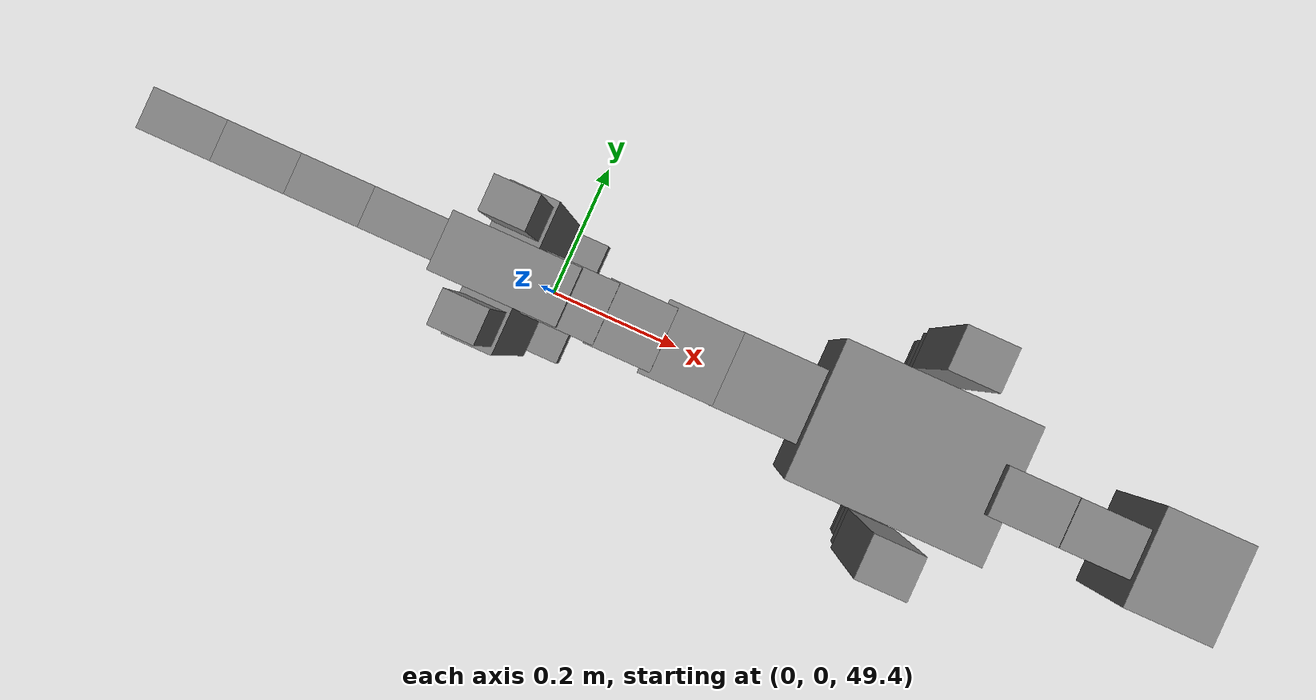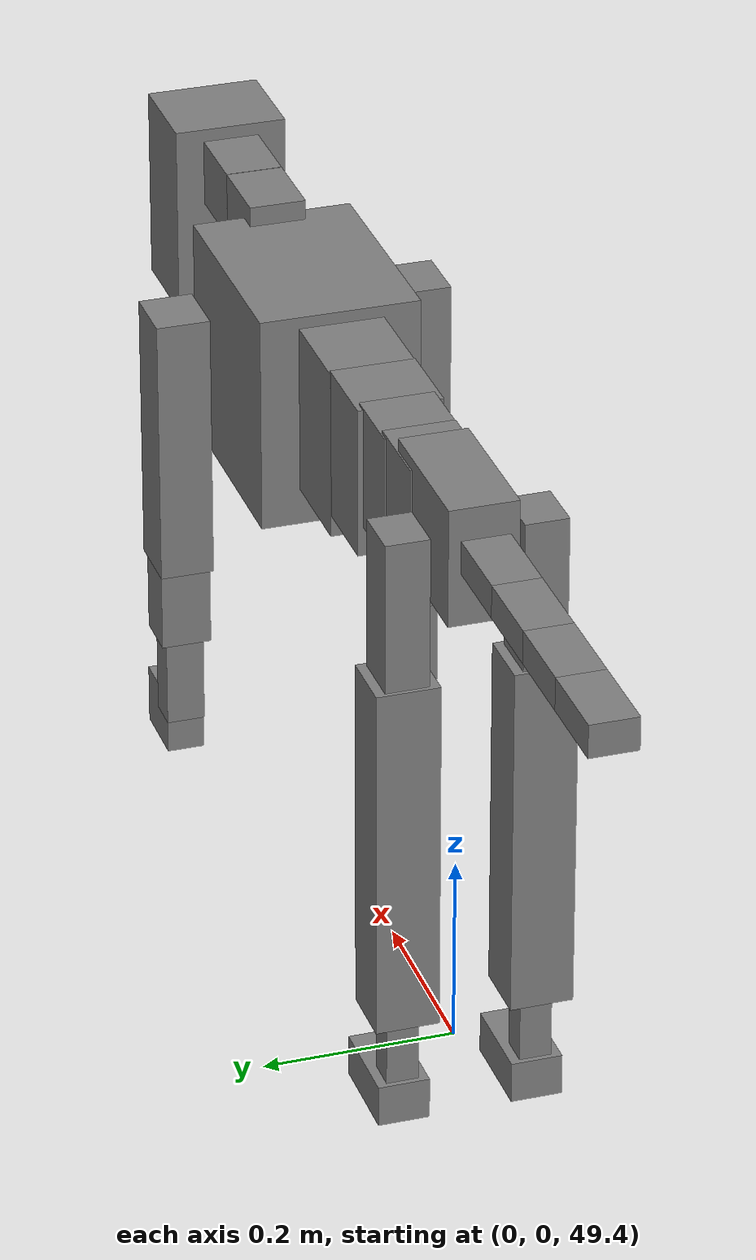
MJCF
<mujoco model="dog">

    <default>
        <joint armature="0.02" stiffness="1" damping="0.2" limited="true"/>
        <geom condim="3" friction="1 0.05 0.05" margin="0.01"/>
        <motor ctrllimited="true" ctrlrange="-1.0 1.0" forcelimited="true" gear="50"/>
    </default>

    <compiler inertiafromgeom="true" angle="radian"/>

    <option timestep="0.016" iterations="50" tolerance="1e-10" solver="Newton" jacobian="dense" cone="pyramidal"/>

    <size nconmax="20000" njmax="60000" nstack="5000000"/>
    <visual>
        <map force="0.1" zfar="30"/>
        <rgba haze="0.15 0.25 0.35 1"/>
        <quality shadowsize="2048"/>
        <global offwidth="800" offheight="800"/>
    </visual>

    <asset>
        <texture type="skybox" builtin="gradient" rgb1="0.3 0.5 0.7" rgb2="0 0 0" width="512" height="512"/>
        <texture name="texplane" type="2d" builtin="checker" rgb1=".2 .3 .4" rgb2=".1 0.15 0.2" width="512" height="512"
                 mark="cross" markrgb=".8 .8 .8"/>
        <texture name="texgeom" type="cube" builtin="flat" mark="cross" width="127" height="1278" rgb1="0.8 0.6 0.4"
                 rgb2="0.8 0.6 0.4" markrgb="1 1 1" random="0.01"/>

        <material name="matplane" reflectance="0.3" texture="texplane" texrepeat="1 1" texuniform="true"/>
        <material name="matgeom" texture="texgeom" texuniform="true" rgba="0.8 0.6 .4 1"/>
    </asset>

    <worldbody>
        <geom name="floor" pos="0 0 0" size="0 0 .25" type="plane" material="matplane" condim="3"/>

        <light directional="false" diffuse=".2 .2 .2" specular="0 0 0" pos="0 0 5" dir="0 0 -1" castshadow="false"/>
        <light mode="targetbodycom" target="torso" directional="false" diffuse=".8 .8 .8" specular="0.3 0.3 0.3"
               pos="0 0 4.0" dir="0 0 -1"/>

        <body name="root" pos="0 0 50">
            <freejoint name="root_1"/>
            <geom type="box" pos="0 0 -0.02" size="0.0774  0.0358  0.063" density="2030"/>

            <body name="spine1" pos="0.054 0 0">
                <joint name="spine1_y" axis="0 1 0" range="0 0.7" limited="true"/>
                <geom type="box" pos="0.02375 0 -0.03" size="0.04375  0.0375  0.05985" density="2030"/>

                <body name="spine2" pos="0.0612 0 0">
                    <joint name="spine2_y" axis="0 1 0" range="-0.15 0.15" limited="true"/>
                    <geom type="box" pos="0.03555  0  -0.04" size="0.04055  0.039  0.06615" density="2030"/>

                    <body name="spine3" pos="0.0730 0 0">
                        <joint name="spine3_y" axis="0 1 0" range="-0.15 0.15" limited="true"/>
                        <geom type="box" pos="0.03555  0  -0.057" size="0.04555  0.0445  0.081" density="2030"/>

                        <body name="spine4" pos="0.0780 0 0">
                            <joint name="spine4_y" axis="0 1 0" range="-0.15 0.15" limited="true"/>
                            <geom type="box" pos="0.05265  0  -0.07" size="0.05265  0.045  0.09135" density="2030"/>

                            <body name="torso" pos="0.1082 0 0">
                                <joint name="torso_y" axis="0 1 0" range="-0.15 0.15" limited="true"/>
                                <geom type="box" pos="0.11925  0  -0.085" size="0.11925  0.085  0.11745"
                                      density="2030"/>

                                <body name="neck1" pos="0.2160  0   0.0180">
                                    <joint name="neck1_y" axis="0 1 0" range="-1.2  -1" limited="true"/>
                                    <geom type="box" pos="0.0423  0  0" size="0.0423  0.03  0.036" density="2325"/>

                                    <body name="neck2" pos="0.0853  0  0">
                                        <joint name="neck2_y" axis="0 1 0" range="0.1  0" limited="true"/>
                                        <geom type="box" pos="0.0423  0  0" size="0.0423  0.03  0.036" density="2325"/>

                                        <body name="head" pos="0.0853  0  0">
                                            <joint name="head_y" axis="0 1 0" range="-0.3  -0.2" limited="true"/>
                                            <geom type="box" pos="0.0531  0  -0.055" size="0.0531  0.06  0.1044"
                                                  density="4030"/>

                                        </body>
                                    </body>
                                </body>

                                <body name="front_shoulder" pos="0.156  0   -0.0480">
                                    <joint name="front_shoulder_y" axis="0 1 0" range="-1 1.5" limited="true"/>
                                    <geom type="box" pos="0 0.13 -0.1194" size="0.0332  0.0284  0.1461" density="1158"/>
                                    <geom type="box" pos="0 -0.13 -0.1194" size="0.0332  0.0284  0.1461"
                                          density="1158"/>

                                    <body name="front_elbow" pos="0  0  -0.2388">
                                        <joint name="front_elbow_y" axis="0 1 0" range="-2 0" limited="true"/>
                                        <geom type="box" pos="0 0.13 -0.0569" size="0.0259  0.0265  0.0569"
                                              density="1081"/>
                                        <geom type="box" pos="0 -0.13 -0.0569" size="0.0259  0.0265  0.0569"
                                              density="1081"/>

                                        <body name="front_wrist" pos="0  0  -0.1138">
                                            <joint name="front_wrist_y" axis="0 1 0" range="-0.2 0" limited="true"/>
                                            <geom type="box" pos="0 0.13 -0.0416" size="0.0183  0.0203  0.0548"
                                                  density="1664"/>
                                            <geom type="box" pos="0 -0.13 -0.0416" size="0.0183  0.0203  0.0548"
                                                  density="1664"/>

                                            <body name="front_finger_end" pos="0  0  -0.0833">
                                                <joint name="front_finger_y" axis="0 1 0" range="-0.4 1"
                                                       limited="true"/>
                                                <geom type="box" pos="0.0197  0.13  -0.0171"
                                                      size="0.0361  0.0197  0.0321" density="1515"/>
                                                <geom type="box" pos="0.0197  -0.13  -0.0171"
                                                      size="0.0361  0.0197  0.0321" density="1515"/>

                                            </body>

                                        </body>
                                    </body>
                                </body>

                            </body>
                        </body>
                    </body>
                </body>
            </body>

            <body name="back_hip" pos="-0.03 0 -0.018">
                <joint name="back_hip_y" axis="0 1 0" range="-1.5 0.3" limited="true"/>
                <geom type="box" pos="0 0.07 -0.0770" size="0.0289  0.0227  0.0998" density="1154"/>
                <geom type="box" pos="0 -0.07 -0.0770" size="0.0289  0.0227  0.0998" density="1154"/>

                <body name="back_knee" pos="0  0  -0.1539">
                    <joint name="back_knee_y" axis="0 1 0" range="0 2.8" limited="true"/>
                    <geom type="box" pos="0 0.07 -0.1764" size="0.0334  0.0329  0.1920" density="1227"/>
                    <geom type="box" pos="0 -0.07 -0.1764" size="0.0334  0.0329  0.1920" density="1227"/>

                    <body name="back_ankle" pos="0  0  -0.3528">
                        <joint name="back_ankle_y" axis="0 1 0" range="-2.2 0" limited="true"/>
                        <geom type="box" pos="0 0.07 -0.0515" size="0.0167  0.0167  0.0627" density="1284"/>
                        <geom type="box" pos="0 -0.07 -0.0515" size="0.0167  0.0167  0.0627" density="1284"/>

                        <body name="back_toe_end" pos="0  0  -0.1030">
                            <joint name="back_toe_y" axis="0 1 0" range="-0.4 1" limited="true"/>
                            <geom type="box" pos="0.0268  0.07  -0.0074" size="0.0492  0.0268  0.0224" density="1515"/>
                            <geom type="box" pos="0.0268  -0.07  -0.0074" size="0.0492  0.0268  0.0224" density="1515"/>

                        </body>
                    </body>
                </body>
            </body>

            <body name="tail1" pos="-0.074 0 -0.006">
                <joint name="tail1_y" axis="0 1 0" range="-0.2 0.2" limited="true"/>
                <geom type="box" pos="-0.0536  0  0" size="0.045  0.025  0.0175" density="1587"/>

                <body name="tail2" pos="-0.09 0 0">
                    <joint name="tail2_y" axis="0 1 0" range="-0.2 0.2" limited="true"/>
                    <geom type="box" pos="-0.0536  0  0" size="0.045  0.025  0.0175" density="1587"/>

                    <body name="tail3" pos="-0.09 0 0">
                        <joint name="tail3_y" axis="0 1 0" range="-0.2 0.2" limited="true"/>
                        <geom type="box" pos="-0.0536  0  0" size="0.045  0.025  0.0175" density="1587"/>

                        <body name="tail4" pos="-0.09 0 0">
                            <joint name="tail4_y" axis="0 1 0" range="-0.2 0.2" limited="true"/>
                            <geom type="box" pos="-0.0536  0  0" size="0.045  0.025  0.0175" density="1587"/>

                        </body>
                    </body>
                </body>
            </body>
        </body>
    </worldbody>

    <actuator>
        <motor joint="spine1_y" forcerange="-150 150     "/>
        <motor joint="spine2_y" forcerange="-150 150     "/>
        <motor joint="spine3_y" forcerange="-150 150     "/>
        <motor joint="spine4_y" forcerange="-150 150     "/>
        <motor joint="torso_y" forcerange="-150 150     "/>
        <motor joint="neck1_y" forcerange="-100 100       "/>
        <motor joint="neck2_y" forcerange="-100 100       "/>
        <motor joint="head_y" forcerange="-150 150       "/>
        <motor joint="front_shoulder_y" forcerange="-145.37 143.80"/>
        <motor joint="front_elbow_y" forcerange="-136.46 156.13"/>
        <motor joint="front_wrist_y" forcerange="-77.95 84.85"/>
        <motor joint="front_finger_y" forcerange="-21.11 44.05"/>
        <motor joint="back_hip_y" forcerange="-281.24 220.87"/>
        <motor joint="back_knee_y" forcerange="-310.69 368.33"/>
        <motor joint="back_angle_y" forcerange="-117.53 50.25"/>
        <motor joint="back_toe_y" forcerange="-54.22 80.38"/>
        <motor joint="tail1_y" forcerange="-50 50     "/>
        <motor joint="tail2_y" forcerange="-50 50     "/>
        <motor joint="tail3_y" forcerange="-50 50     "/>
        <motor joint="tail4_y" forcerange="-50 50     "/>
    </actuator>
</mujoco>
